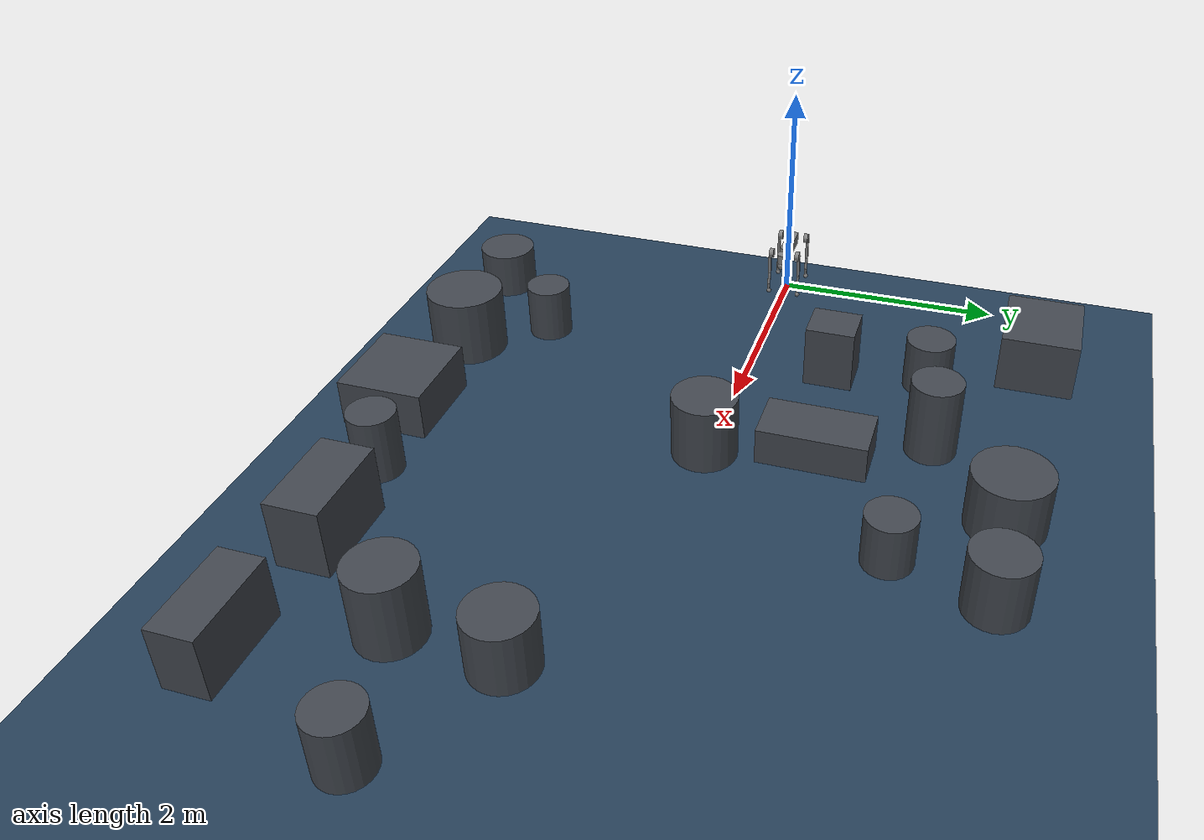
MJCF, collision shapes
<?xml version="1.0" encoding="utf-8"?>
<mujoco model="go2 random_scene_04">
  <include file="go2.xml" />
  <statistic center="3.5 0 0.1" extent="8" />
  <visual>
    <headlight diffuse="0.6 0.6 0.6" ambient="0.3 0.3 0.3" specular="0 0 0" />
    <rgba haze="0.15 0.25 0.35 1" />
    <global azimuth="135" elevation="-40" />
  </visual>
  <asset>
    <texture type="skybox" builtin="gradient" rgb1="0.3 0.5 0.7" rgb2="0 0 0" width="512" height="3072" />
    <texture type="2d" name="random_groundplane" builtin="checker" mark="edge" rgb1="0.2 0.3 0.4" rgb2="0.1 0.2 0.3" markrgb="0.8 0.8 0.8" width="300" height="300" />
    <material name="random_groundplane" texture="random_groundplane" texuniform="true" texrepeat="5 5" reflectance="0.2" />
  </asset>
  <worldbody>
    <light pos="1 0 7" dir="0 0 -1" directional="true" />
    <geom name="floor" type="plane" pos="3.5 0 0" size="4 3.5 0.05" material="random_groundplane" />
    <geom name="ppt_obstacle_01" type="cylinder" pos="0.77835159711396817 -2.6656725220230917 0.21109506917486809" size="0.25402246888482993 0.21109506917486809" rgba="0.26 0.28 0.31 1" />
    <geom name="ppt_obstacle_02" type="cylinder" pos="6.41358075208099 -1.2368333368263187 0.25991452209631999" size="0.2125152246481932 0.25991452209631999" rgba="0.26 0.28 0.31 1" />
    <geom name="ppt_obstacle_03" type="cylinder" pos="1.919479379502476 -2.560819016094531 0.30094063742138666" size="0.33713161641649197 0.30094063742138666" rgba="0.26 0.28 0.31 1" />
    <geom name="ppt_obstacle_04" type="cylinder" pos="5.4016735528366375 -0.64480050921438403 0.25210194401803177" size="0.26568376677652833 0.25210194401803177" rgba="0.26 0.28 0.31 1" />
    <geom name="ppt_obstacle_05" type="cylinder" pos="5.3579950679115331 -1.5034359348977202 0.31594086306125768" size="0.26886513042514709 0.31594086306125768" rgba="0.26 0.28 0.31 1" />
    <geom name="ppt_obstacle_06" type="cylinder" pos="2.259913712112529 1.7352122743229779 0.3403746055109807" size="0.21540838206128773 0.3403746055109807" rgba="0.26 0.28 0.31 1" />
    <geom name="ppt_obstacle_07" type="box" pos="2.6030861014699287 0.85078555857432336 0.1589756100343391" size="0.23553206496642512 0.45502752184986045 0.1589756100343391" rgba="0.26 0.28 0.31 1" />
    <geom name="ppt_obstacle_08" type="cylinder" pos="3.9231483212046414 2.4205050033353168 0.26107790291833893" size="0.25159283417943251 0.26107790291833893" rgba="0.26 0.28 0.31 1" />
    <geom name="ppt_obstacle_09" type="box" pos="4.6181030363521822 -2.4084090440415311 0.29433375713708443" size="0.39692608477589364 0.22357998774689403 0.29433375713708443" rgba="0.26 0.28 0.31 1" />
    <geom name="ppt_obstacle_10" type="cylinder" pos="1.3332870686847391 1.5751117680609581 0.23830984275211584" size="0.21104806439594498 0.23830984275211584" rgba="0.26 0.28 0.31 1" />
    <geom name="ppt_obstacle_11" type="cylinder" pos="3.0229152511288206 2.4081645189111742 0.25607297353498382" size="0.32061353976668416 0.25607297353498382" rgba="0.26 0.28 0.31 1" />
    <geom name="ppt_obstacle_12" type="cylinder" pos="3.7858893856782827 -2.4639233418666713 0.28377441100500145" size="0.20164008747835652 0.28377441100500145" rgba="0.26 0.28 0.31 1" />
    <geom name="ppt_obstacle_13" type="box" pos="5.8330890369018311 -2.5118174766740058 0.26990218996769932" size="0.39708594729958108 0.18863844389254836 0.26990218996769932" rgba="0.26 0.28 0.31 1" />
    <geom name="ppt_obstacle_14" type="box" pos="2.9391674966202275 -2.6797297658854937 0.20666189581086675" size="0.39521641609358243 0.37664545875849631 0.20666189581086675" rgba="0.26 0.28 0.31 1" />
    <geom name="ppt_obstacle_15" type="cylinder" pos="2.828923387853338 -0.025826108557986505 0.28397334144152997" size="0.27392746855254507 0.28397334144152997" rgba="0.26 0.28 0.31 1" />
    <geom name="ppt_obstacle_16" type="box" pos="1.4404200998319676 0.73882414952137765 0.27819559164381902" size="0.19063214298124115 0.21286112927950318 0.27819559164381902" rgba="0.26 0.28 0.31 1" />
    <geom name="ppt_obstacle_17" type="cylinder" pos="3.67199150499229 1.6171737372581005 0.22393256790196162" size="0.2046841421929918 0.22393256790196162" rgba="0.26 0.28 0.31 1" />
    <geom name="ppt_obstacle_18" type="box" pos="0.82643679435955886 2.48669234096911 0.25605383630462719" size="0.37880617449836995 0.33003148882607058 0.25605383630462719" rgba="0.26 0.28 0.31 1" />
    <geom name="ppt_obstacle_19" type="cylinder" pos="1.4558623962048953 -1.9458753978652683 0.24231542230404743" size="0.19413677612739408 0.24231542230404743" rgba="0.26 0.28 0.31 1" />
  </worldbody>
</mujoco>

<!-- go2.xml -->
<mujoco model="go2">
  <compiler angle="radian" meshdir="assets" autolimits="true" />

  <option cone="elliptic" impratio="100" />

  <default>
    <default class="go2">
      <geom friction="0.4" margin="0.001" condim="1"/>
      <joint axis="0 1 0" damping="0.1" armature="0.01" frictionloss="0.2"/>
      <motor ctrlrange="-23.7 23.7"/>
      <default class="abduction">
        <joint axis="1 0 0" range="-1.0472 1.0472"/>
      </default>
      <default class="hip">
        <default class="front_hip">
          <joint range="-1.5708 3.4907"/>
        </default>
        <default class="back_hip">
          <joint range="-0.5236 4.5379"/>
        </default>
      </default>
      <default class="knee">
        <joint range="-2.7227 -0.83776"/>
        <motor ctrlrange="-45.43 45.43"/>
      </default>
      <default class="visual">
        <geom type="mesh" contype="0" conaffinity="0" group="2"/>
      </default>
      <default class="collision">
        <geom group="3"/>
        <default class="foot">
          <geom size="0.022" pos="-0.002 0 -0.213" priority="1" condim="6"
            friction="0.4 0.02 0.01"/>
        </default>
      </default>
    </default>
  </default>

  <asset>
    <material name="metal" rgba=".9 .95 .95 1" />
    <material name="black" rgba="0 0 0 1" />
    <material name="white" rgba="1 1 1 1" />
    <material name="gray" rgba="0.671705 0.692426 0.774270 1" />
    <material name="transparent" rgba="1 1 1 0.01" />

    <mesh file="base_0.obj" />
    <mesh file="base_1.obj" />
    <mesh file="base_2.obj" />
    <mesh file="base_3.obj" />
    <mesh file="base_4.obj" />
    <mesh file="hip_0.obj" />
    <mesh file="hip_1.obj" />
    <mesh file="thigh_0.obj" />
    <mesh file="thigh_1.obj" />
    <mesh file="thigh_mirror_0.obj" />
    <mesh file="thigh_mirror_1.obj" />
    <mesh file="calf_0.obj" />
    <mesh file="calf_1.obj" />
    <mesh file="calf_mirror_0.obj" />
    <mesh file="calf_mirror_1.obj" />
    <mesh file="foot.obj" />
  </asset>

  <worldbody>
    <body name="base_link" pos="0 0 0.445" childclass="go2">
      <inertial pos="0.021112 0 -0.005366" quat="-0.000543471 0.713435 -0.00173769 0.700719"
        mass="6.921"
        diaginertia="0.107027 0.0980771 0.0244531" />
      <freejoint />
      <geom mesh="base_0" material="black" class="visual" />
      <geom mesh="base_1" material="black" class="visual" />
      <geom mesh="base_2" material="black" class="visual" />
      <geom mesh="base_3" material="white" class="visual" />
      <geom mesh="base_4" material="gray" class="visual" />
      <geom size="0.1881 0.04675 0.057" type="box" class="collision" />
      <geom size="0.05 0.045" pos="0.285 0 0.01" type="cylinder" class="collision" />
      <geom size="0.047" pos="0.293 0 -0.06" class="collision" />
      <site name="imu" pos="-0.02557 0 0.04232" />
      <body name="FL_hip" pos="0.1934 0.0465 0">
        <inertial pos="-0.0054 0.00194 -0.000105" quat="0.497014 0.499245 0.505462 0.498237"
          mass="0.678"
          diaginertia="0.00088403 0.000596003 0.000479967" />
        <joint name="FL_hip_joint" class="abduction" />
        <geom mesh="hip_0" material="metal" class="visual" />
        <geom mesh="hip_1" material="gray" class="visual" />
        <geom size="0.046 0.02" pos="0 0.08 0" quat="1 1 0 0" type="cylinder" class="collision" />
        <body name="FL_thigh" pos="0 0.0955 0">
          <inertial pos="-0.00374 -0.0223 -0.0327" quat="0.829533 0.0847635 -0.0200632 0.551623"
            mass="1.152"
            diaginertia="0.00594973 0.00584149 0.000878787" />
          <joint name="FL_thigh_joint" class="front_hip" />
          <geom mesh="thigh_0" material="metal" class="visual" />
          <geom mesh="thigh_1" material="gray" class="visual" />
          <geom size="0.1065 0.01225 0.017" pos="0 0 -0.1065" quat="0.707107 0 0.707107 0"
            type="box" class="collision" />
          <body name="FL_calf" pos="0 0 -0.213">
            <inertial pos="0.00629595 -0.000622121 -0.141417"
              quat="0.710672 0.00154099 -0.00450087 0.703508"
              mass="0.241352" diaginertia="0.0014901 0.00146356 5.31397e-05" />
            <joint name="FL_calf_joint" class="knee" />
            <geom mesh="calf_0" material="gray" class="visual" />
            <geom mesh="calf_1" material="black" class="visual" />
            <geom size="0.012 0.06" pos="0.008 0 -0.06" quat="0.994493 0 -0.104807 0"
              type="cylinder" class="collision" />
            <geom size="0.011 0.0325" pos="0.02 0 -0.148" quat="0.999688 0 0.0249974 0"
              type="cylinder" class="collision" />
            <geom pos="0 0 -0.213" mesh="foot" class="visual" material="black" />
            <geom name="FL" class="foot" />
            <site name="FL_touch" pos="0 0 -0.213" size="0.027" material="transparent"/>
            <body name="FL_foot" pos="0 0 -0.213"/>
          </body>
        </body>
      </body>
      <body name="FR_hip" pos="0.1934 -0.0465 0">
        <inertial pos="-0.0054 -0.00194 -0.000105" quat="0.498237 0.505462 0.499245 0.497014"
          mass="0.678"
          diaginertia="0.00088403 0.000596003 0.000479967" />
        <joint name="FR_hip_joint" class="abduction" />
        <geom mesh="hip_0" material="metal" class="visual" quat="4.63268e-05 1 0 0" />
        <geom mesh="hip_1" material="gray" class="visual" quat="4.63268e-05 1 0 0" />
        <geom size="0.046 0.02" pos="0 -0.08 0" quat="0.707107 0.707107 0 0" type="cylinder"
          class="collision" />
        <body name="FR_thigh" pos="0 -0.0955 0">
          <inertial pos="-0.00374 0.0223 -0.0327" quat="0.551623 -0.0200632 0.0847635 0.829533"
            mass="1.152"
            diaginertia="0.00594973 0.00584149 0.000878787" />
          <joint name="FR_thigh_joint" class="front_hip" />
          <geom mesh="thigh_mirror_0" material="metal" class="visual" />
          <geom mesh="thigh_mirror_1" material="gray" class="visual" />
          <geom size="0.1065 0.01225 0.017" pos="0 0 -0.1065" quat="0.707107 0 0.707107 0"
            type="box" class="collision" />
          <body name="FR_calf" pos="0 0 -0.213">
            <inertial pos="0.00629595 0.000622121 -0.141417"
              quat="0.703508 -0.00450087 0.00154099 0.710672"
              mass="0.241352" diaginertia="0.0014901 0.00146356 5.31397e-05" />
            <joint name="FR_calf_joint" class="knee" />
            <geom mesh="calf_mirror_0" material="gray" class="visual" />
            <geom mesh="calf_mirror_1" material="black" class="visual" />
            <geom size="0.013 0.06" pos="0.01 0 -0.06" quat="0.995004 0 -0.0998334 0"
              type="cylinder" class="collision" />
            <geom size="0.011 0.0325" pos="0.02 0 -0.148" quat="0.999688 0 0.0249974 0"
              type="cylinder" class="collision" />
            <geom pos="0 0 -0.213" mesh="foot" class="visual" material="black" />
            <geom name="FR" class="foot" />
            <site name="FR_touch" pos="0 0 -0.213" size="0.027" material="transparent"/>
            <body name="FR_foot" pos="0 0 -0.213"/>
          </body>
        </body>
      </body>
      <body name="RL_hip" pos="-0.1934 0.0465 0">
        <inertial pos="0.0054 0.00194 -0.000105" quat="0.505462 0.498237 0.497014 0.499245"
          mass="0.678"
          diaginertia="0.00088403 0.000596003 0.000479967" />
        <joint name="RL_hip_joint" class="abduction" />
        <geom mesh="hip_0" material="metal" class="visual" quat="4.63268e-05 0 1 0" />
        <geom mesh="hip_1" material="gray" class="visual" quat="4.63268e-05 0 1 0" />
        <geom size="0.046 0.02" pos="0 0.08 0" quat="0.707107 0.707107 0 0" type="cylinder"
          class="collision" />
        <body name="RL_thigh" pos="0 0.0955 0">
          <inertial pos="-0.00374 -0.0223 -0.0327" quat="0.829533 0.0847635 -0.0200632 0.551623"
            mass="1.152"
            diaginertia="0.00594973 0.00584149 0.000878787" />
          <joint name="RL_thigh_joint" class="back_hip" />
          <geom mesh="thigh_0" material="metal" class="visual" />
          <geom mesh="thigh_1" material="gray" class="visual" />
          <geom size="0.1065 0.01225 0.017" pos="0 0 -0.1065" quat="0.707107 0 0.707107 0"
            type="box" class="collision" />
          <body name="RL_calf" pos="0 0 -0.213">
            <inertial pos="0.00629595 -0.000622121 -0.141417"
              quat="0.710672 0.00154099 -0.00450087 0.703508"
              mass="0.241352" diaginertia="0.0014901 0.00146356 5.31397e-05" />
            <joint name="RL_calf_joint" class="knee" />
            <geom mesh="calf_0" material="gray" class="visual" />
            <geom mesh="calf_1" material="black" class="visual" />
            <geom size="0.013 0.06" pos="0.01 0 -0.06" quat="0.995004 0 -0.0998334 0"
              type="cylinder" class="collision" />
            <geom size="0.011 0.0325" pos="0.02 0 -0.148" quat="0.999688 0 0.0249974 0"
              type="cylinder" class="collision" />
            <geom pos="0 0 -0.213" mesh="foot" class="visual" material="black" />
            <geom name="RL" class="foot" />
            <site name="RL_touch" pos="0 0 -0.213" size="0.027" material="transparent"/>
            <body name="RL_foot" pos="0 0 -0.213" />
          </body>
        </body>
      </body>
      <body name="RR_hip" pos="-0.1934 -0.0465 0">
        <inertial pos="0.0054 -0.00194 -0.000105" quat="0.499245 0.497014 0.498237 0.505462"
          mass="0.678"
          diaginertia="0.00088403 0.000596003 0.000479967" />
        <joint name="RR_hip_joint" class="abduction" />
        <geom mesh="hip_0" material="metal" class="visual"
          quat="2.14617e-09 4.63268e-05 4.63268e-05 -1" />
        <geom mesh="hip_1" material="gray" class="visual"
          quat="2.14617e-09 4.63268e-05 4.63268e-05 -1" />
        <geom size="0.046 0.02" pos="0 -0.08 0" quat="0.707107 0.707107 0 0" type="cylinder"
          class="collision" />
        <body name="RR_thigh" pos="0 -0.0955 0">
          <inertial pos="-0.00374 0.0223 -0.0327" quat="0.551623 -0.0200632 0.0847635 0.829533"
            mass="1.152"
            diaginertia="0.00594973 0.00584149 0.000878787" />
          <joint name="RR_thigh_joint" class="back_hip" />
          <geom mesh="thigh_mirror_0" material="metal" class="visual" />
          <geom mesh="thigh_mirror_1" material="gray" class="visual" />
          <geom size="0.1065 0.01225 0.017" pos="0 0 -0.1065" quat="0.707107 0 0.707107 0"
            type="box" class="collision" />
          <body name="RR_calf" pos="0 0 -0.213">
            <inertial pos="0.00629595 0.000622121 -0.141417"
              quat="0.703508 -0.00450087 0.00154099 0.710672"
              mass="0.241352" diaginertia="0.0014901 0.00146356 5.31397e-05" />
            <joint name="RR_calf_joint" class="knee" />
            <geom mesh="calf_mirror_0" material="gray" class="visual" />
            <geom mesh="calf_mirror_1" material="black" class="visual" />
            <geom size="0.013 0.06" pos="0.01 0 -0.06" quat="0.995004 0 -0.0998334 0"
              type="cylinder" class="collision" />
            <geom size="0.011 0.0325" pos="0.02 0 -0.148" quat="0.999688 0 0.0249974 0"
              type="cylinder" class="collision" />
            <geom pos="0 0 -0.213" mesh="foot" class="visual" material="black" />
            <geom name="RR" class="foot" />
            <site name="RR_touch" pos="0 0 -0.213" size="0.027" material="transparent"/>
            <body name="RR_foot" pos="0 0 -0.213"/>
          </body>
        </body>
      </body>
    </body>
  </worldbody>

  <actuator>
    <motor class="abduction" name="FR_hip" joint="FR_hip_joint" />
    <motor class="hip" name="FR_thigh" joint="FR_thigh_joint" />
    <motor class="knee" name="FR_calf" joint="FR_calf_joint" />
    <motor class="abduction" name="FL_hip" joint="FL_hip_joint" />
    <motor class="hip" name="FL_thigh" joint="FL_thigh_joint" />
    <motor class="knee" name="FL_calf" joint="FL_calf_joint" />
    <motor class="abduction" name="RR_hip" joint="RR_hip_joint" />
    <motor class="hip" name="RR_thigh" joint="RR_thigh_joint" />
    <motor class="knee" name="RR_calf" joint="RR_calf_joint" />
    <motor class="abduction" name="RL_hip" joint="RL_hip_joint" />
    <motor class="hip" name="RL_thigh" joint="RL_thigh_joint" />
    <motor class="knee" name="RL_calf" joint="RL_calf_joint" />
  </actuator>

  <sensor>
    <jointpos name="FR_hip_pos" joint="FR_hip_joint" />
    <jointpos name="FR_thigh_pos" joint="FR_thigh_joint" />
    <jointpos name="FR_calf_pos" joint="FR_calf_joint" />
    <jointpos name="FL_hip_pos" joint="FL_hip_joint" />
    <jointpos name="FL_thigh_pos" joint="FL_thigh_joint" />
    <jointpos name="FL_calf_pos" joint="FL_calf_joint" />
    <jointpos name="RR_hip_pos" joint="RR_hip_joint" />
    <jointpos name="RR_thigh_pos" joint="RR_thigh_joint" />
    <jointpos name="RR_calf_pos" joint="RR_calf_joint" />
    <jointpos name="RL_hip_pos" joint="RL_hip_joint" />
    <jointpos name="RL_thigh_pos" joint="RL_thigh_joint" />
    <jointpos name="RL_calf_pos" joint="RL_calf_joint" />

    <jointvel name="FR_hip_vel" joint="FR_hip_joint" />
    <jointvel name="FR_thigh_vel" joint="FR_thigh_joint" />
    <jointvel name="FR_calf_vel" joint="FR_calf_joint" />
    <jointvel name="FL_hip_vel" joint="FL_hip_joint" />
    <jointvel name="FL_thigh_vel" joint="FL_thigh_joint" />
    <jointvel name="FL_calf_vel" joint="FL_calf_joint" />
    <jointvel name="RR_hip_vel" joint="RR_hip_joint" />
    <jointvel name="RR_thigh_vel" joint="RR_thigh_joint" />
    <jointvel name="RR_calf_vel" joint="RR_calf_joint" />
    <jointvel name="RL_hip_vel" joint="RL_hip_joint" />
    <jointvel name="RL_thigh_vel" joint="RL_thigh_joint" />
    <jointvel name="RL_calf_vel" joint="RL_calf_joint" />

    <jointactuatorfrc name="FR_hip_torque" joint="FR_hip_joint" noise="0.01" />
    <jointactuatorfrc name="FR_thigh_torque" joint="FR_thigh_joint" noise="0.01" />
    <jointactuatorfrc name="FR_calf_torque" joint="FR_calf_joint" noise="0.01" />
    <jointactuatorfrc name="FL_hip_torque" joint="FL_hip_joint" noise="0.01" />
    <jointactuatorfrc name="FL_thigh_torque" joint="FL_thigh_joint" noise="0.01" />
    <jointactuatorfrc name="FL_calf_torque" joint="FL_calf_joint" noise="0.01" />
    <jointactuatorfrc name="RR_hip_torque" joint="RR_hip_joint" noise="0.01" />
    <jointactuatorfrc name="RR_thigh_torque" joint="RR_thigh_joint" noise="0.01" />
    <jointactuatorfrc name="RR_calf_torque" joint="RR_calf_joint" noise="0.01" />
    <jointactuatorfrc name="RL_hip_torque" joint="RL_hip_joint" noise="0.01" />
    <jointactuatorfrc name="RL_thigh_torque" joint="RL_thigh_joint" noise="0.01" />
    <jointactuatorfrc name="RL_calf_torque" joint="RL_calf_joint" noise="0.01" />

    <framequat name="imu_quat" objtype="site" objname="imu" />
    <gyro name="imu_gyro" site="imu" />
    <accelerometer name="imu_acc" site="imu" />

    <framepos name="frame_pos" objtype="site" objname="imu" />
    <framelinvel name="frame_vel" objtype="site" objname="imu" />

    <touch name="FR_touch" site="FR_touch" />
    <touch name="FL_touch" site="FL_touch" />
    <touch name="RR_touch" site="RR_touch" />
    <touch name="RL_touch" site="RL_touch" />
  </sensor>

  <keyframe>
    <key name="home" qpos="0 0 0.445 1 0 0 0 0 0.8 -1.5 0 0.8 -1.5 0 0.8 -1.5 0 0.8 -1.5"
         ctrl="0 0 0 0 0 0 0 0 0 0 0 0" />
  </keyframe>
</mujoco>
